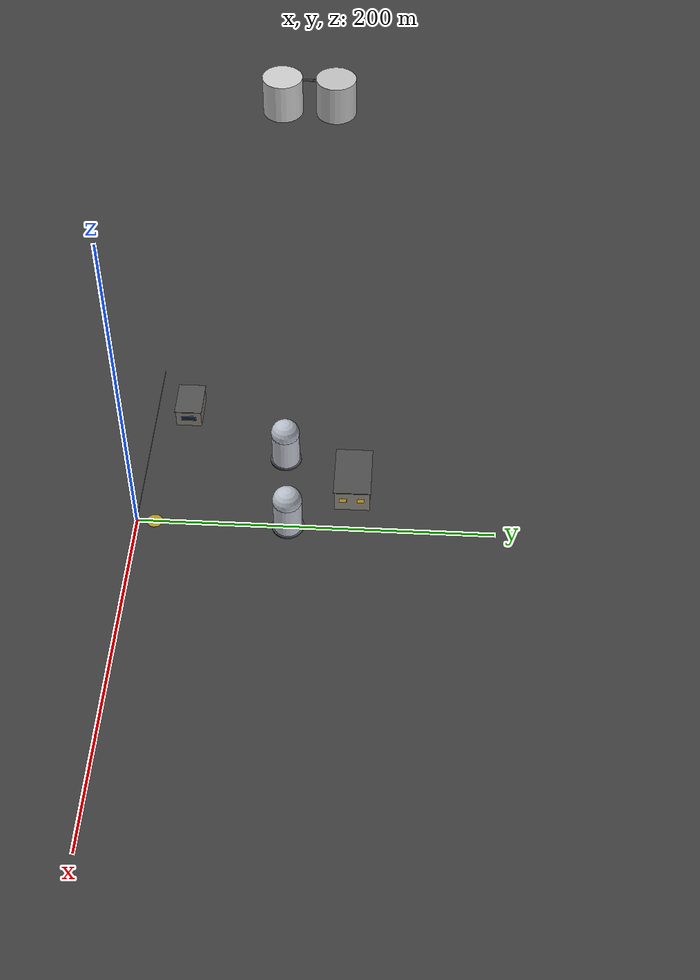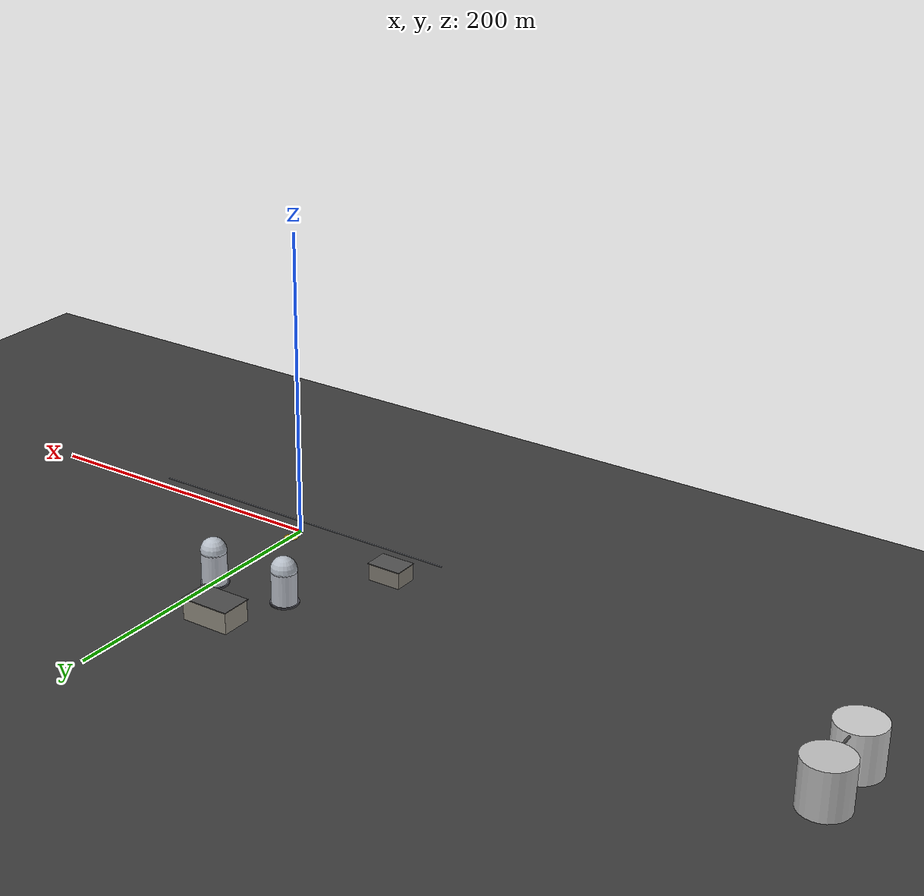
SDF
<sdf version="1.9">
 <world name="lng_terminal">
  <model name="ground">
   <static>true</static>
   <pose>0 0 -0.05 0 0 0</pose>
   <link name="l">
    <collision name="c"><geometry><box><size>2000 2000 0.1</size></box></geometry></collision>
    <visual name="v">
     <geometry><box><size>2000 2000 0.1</size></box></geometry>
     <material>
      <ambient>0.18 0.18 0.18 1</ambient>
      <diffuse>0.24 0.24 0.24 1</diffuse>
      <specular>0.03 0.03 0.03 1</specular>
      <pbr><metal><roughness>0.96</roughness><metalness>0.0</metalness></metal></pbr>
     </material>
    </visual>
   </link>
  </model>
  <model name="drone_d2">
   <static>false</static>
   <pose>0 10 0.18 0 0 0.4</pose>
   <link name="l">
    <gravity>false</gravity>
    <inertial>
     <mass>0.8</mass>
     <inertia><ixx>0.04</ixx><iyy>0.04</iyy><izz>0.04</izz><ixy>0</ixy><ixz>0</ixz><iyz>0</iyz></inertia>
    </inertial>
    <visual name="frame">
     <geometry><box><size>0.36 0.36 0.10</size></box></geometry>
     <material>
      <ambient>0.10 0.10 0.10 1</ambient>
      <diffuse>0.16 0.16 0.18 1</diffuse>
      <pbr><metal><roughness>0.30</roughness><metalness>0.7</metalness></metal></pbr>
     </material>
    </visual>
    <visual name="arm_a">
     <pose>0.18 0.18 0 0 0 0.785</pose>
     <geometry><box><size>0.55 0.05 0.04</size></box></geometry>
     <material><ambient>0.12 0.12 0.14 1</ambient><diffuse>0.18 0.18 0.22 1</diffuse></material>
    </visual>
    <visual name="arm_b">
     <pose>-0.18 0.18 0 0 0 -0.785</pose>
     <geometry><box><size>0.55 0.05 0.04</size></box></geometry>
     <material><ambient>0.12 0.12 0.14 1</ambient><diffuse>0.18 0.18 0.22 1</diffuse></material>
    </visual>
    <visual name="arm_c">
     <pose>-0.18 -0.18 0 0 0 0.785</pose>
     <geometry><box><size>0.55 0.05 0.04</size></box></geometry>
     <material><ambient>0.12 0.12 0.14 1</ambient><diffuse>0.18 0.18 0.22 1</diffuse></material>
    </visual>
    <visual name="arm_d">
     <pose>0.18 -0.18 0 0 0 -0.785</pose>
     <geometry><box><size>0.55 0.05 0.04</size></box></geometry>
     <material><ambient>0.12 0.12 0.14 1</ambient><diffuse>0.18 0.18 0.22 1</diffuse></material>
    </visual>
    <visual name="m_a">
     <pose>0.32 0.32 0.02 0 0 0</pose>
     <geometry><cylinder><radius>0.045</radius><length>0.07</length></cylinder></geometry>
     <material><ambient>0.55 0.50 0.0 1</ambient><diffuse>0.75 0.68 0.0 1</diffuse></material>
    </visual>
    <visual name="m_b">
     <pose>-0.32 0.32 0.02 0 0 0</pose>
     <geometry><cylinder><radius>0.045</radius><length>0.07</length></cylinder></geometry>
     <material><ambient>0.55 0.50 0.0 1</ambient><diffuse>0.75 0.68 0.0 1</diffuse></material>
    </visual>
    <visual name="m_c">
     <pose>-0.32 -0.32 0.02 0 0 0</pose>
     <geometry><cylinder><radius>0.045</radius><length>0.07</length></cylinder></geometry>
     <material><ambient>0.55 0.50 0.0 1</ambient><diffuse>0.75 0.68 0.0 1</diffuse></material>
    </visual>
    <visual name="m_d">
     <pose>0.32 -0.32 0.02 0 0 0</pose>
     <geometry><cylinder><radius>0.045</radius><length>0.07</length></cylinder></geometry>
     <material><ambient>0.55 0.50 0.0 1</ambient><diffuse>0.75 0.68 0.0 1</diffuse></material>
    </visual>
    <collision name="c"><geometry><box><size>0.36 0.36 0.10</size></box></geometry></collision>
   </link>
  </model>
  <model name="drone_pad">
   <static>true</static>
   <pose>0 10 0.02 0 0 0</pose>
   <link name="l">
    <visual name="v">
     <geometry><cylinder><radius>4.5</radius><length>0.04</length></cylinder></geometry>
     <material><ambient>0.58 0.48 0.08 1</ambient><diffuse>0.72 0.60 0.10 1</diffuse></material>
    </visual>
   </link>
  </model>
  <model name="tank_a1">
   <static>true</static>
   <pose>-50 80 0 0 0 0</pose>
   <link name="l">
    <collision name="c">
     <geometry><cylinder><radius>8</radius><length>22</length></cylinder></geometry>
    </collision>
    <visual name="body">
     <pose>0 0 11 0 0 0</pose>
     <geometry><cylinder><radius>8</radius><length>22</length></cylinder></geometry>
     <material>
      <ambient>0.68 0.70 0.74 1</ambient>
      <diffuse>0.76 0.78 0.82 1</diffuse>
      <specular>0.55 0.56 0.60 1</specular>
      <pbr><metal><roughness>0.22</roughness><metalness>0.88</metalness></metal></pbr>
     </material>
    </visual>
    <visual name="dome">
     <pose>0 0 22.5 0 0 0</pose>
     <geometry><sphere><radius>8.2</radius></sphere></geometry>
     <material>
      <ambient>0.65 0.68 0.72 1</ambient>
      <diffuse>0.73 0.76 0.80 1</diffuse>
      <specular>0.60 0.62 0.65 1</specular>
      <pbr><metal><roughness>0.18</roughness><metalness>0.90</metalness></metal></pbr>
     </material>
    </visual>
    <visual name="ring">
     <pose>0 0 0.5 0 0 0</pose>
     <geometry><cylinder><radius>9</radius><length>1.0</length></cylinder></geometry>
     <material>
      <ambient>0.25 0.25 0.28 1</ambient>
      <diffuse>0.32 0.32 0.36 1</diffuse>
      <specular>0.22 0.22 0.24 1</specular>
      <pbr><metal><roughness>0.45</roughness><metalness>0.75</metalness></metal></pbr>
     </material>
    </visual>
   </link>
  </model>
  <model name="tank_a2">
   <static>true</static>
   <pose>0 85 0 0 0 0</pose>
   <link name="l">
    <collision name="c">
     <geometry><cylinder><radius>8</radius><length>22</length></cylinder></geometry>
    </collision>
    <visual name="body">
     <pose>0 0 11 0 0 0</pose>
     <geometry><cylinder><radius>8</radius><length>22</length></cylinder></geometry>
     <material>
      <ambient>0.68 0.70 0.74 1</ambient>
      <diffuse>0.76 0.78 0.82 1</diffuse>
      <specular>0.55 0.56 0.60 1</specular>
      <pbr><metal><roughness>0.22</roughness><metalness>0.88</metalness></metal></pbr>
     </material>
    </visual>
    <visual name="dome">
     <pose>0 0 22.5 0 0 0</pose>
     <geometry><sphere><radius>8.2</radius></sphere></geometry>
     <material>
      <ambient>0.65 0.68 0.72 1</ambient>
      <diffuse>0.73 0.76 0.80 1</diffuse>
      <specular>0.60 0.62 0.65 1</specular>
      <pbr><metal><roughness>0.18</roughness><metalness>0.90</metalness></metal></pbr>
     </material>
    </visual>
    <visual name="ring">
     <pose>0 0 0.5 0 0 0</pose>
     <geometry><cylinder><radius>9</radius><length>1.0</length></cylinder></geometry>
     <material>
      <ambient>0.25 0.25 0.28 1</ambient>
      <diffuse>0.32 0.32 0.36 1</diffuse>
      <specular>0.22 0.22 0.24 1</specular>
      <pbr><metal><roughness>0.45</roughness><metalness>0.75</metalness></metal></pbr>
     </material>
    </visual>
   </link>
  </model>
  <model name="pipe_main">
   <static>true</static>
   <pose>0 1.5 8.5 0 1.5707 0</pose>
   <link name="l">
    <collision name="c">
     <geometry><cylinder><radius>0.28</radius><length>220</length></cylinder></geometry>
    </collision>
    <visual name="v">
     <geometry><cylinder><radius>0.28</radius><length>220</length></cylinder></geometry>
     <material>
      <ambient>0.46 0.48 0.52 1</ambient>
      <diffuse>0.54 0.56 0.60 1</diffuse>
      <pbr><metal><roughness>0.26</roughness><metalness>0.84</metalness></metal></pbr>
     </material>
    </visual>
   </link>
  </model>
  <model name="control_room">
   <static>true</static>
   <pose>-85 20 5.5 0 0 0</pose>
   <link name="l">
    <collision name="c"><geometry><box><size>22 15 11</size></box></geometry></collision>
    <visual name="walls">
     <geometry><box><size>22 15 11</size></box></geometry>
     <material>
      <ambient>0.42 0.40 0.37 1</ambient>
      <diffuse>0.52 0.50 0.46 1</diffuse>
      <pbr><metal><roughness>0.88</roughness><metalness>0.0</metalness></metal></pbr>
     </material>
    </visual>
    <visual name="roof">
     <pose>0 0 5.7 0 0 0</pose>
     <geometry><box><size>23 16 0.4</size></box></geometry>
     <material><ambient>0.25 0.25 0.25 1</ambient><diffuse>0.32 0.32 0.32 1</diffuse></material>
    </visual>
    <visual name="win">
     <pose>11.6 0 1.2 0 0 0</pose>
     <geometry><box><size>0.12 9 3.5</size></box></geometry>
     <material>
      <ambient>0.04 0.08 0.16 1</ambient>
      <diffuse>0.06 0.12 0.22 1</diffuse>
      <emissive>0.05 0.10 0.18 1</emissive>
     </material>
    </visual>
   </link>
  </model>
  <model name="admin_bldg">
   <static>true</static>
   <pose>-30 120 7 0 0 0</pose>
   <link name="l">
    <collision name="c"><geometry><box><size>32 20 14</size></box></geometry></collision>
    <visual name="walls">
     <geometry><box><size>32 20 14</size></box></geometry>
     <material>
      <ambient>0.48 0.46 0.42 1</ambient>
      <diffuse>0.58 0.56 0.51 1</diffuse>
      <pbr><metal><roughness>0.86</roughness><metalness>0.0</metalness></metal></pbr>
     </material>
    </visual>
    <visual name="roof">
     <pose>0 0 7.2 0 0 0</pose>
     <geometry><box><size>33 21 0.5</size></box></geometry>
     <material><ambient>0.24 0.24 0.24 1</ambient><diffuse>0.30 0.30 0.30 1</diffuse></material>
    </visual>
    <visual name="win_a">
     <pose>16.6 -5 1.5 0 0 0</pose>
     <geometry><box><size>0.12 4 3</size></box></geometry>
     <material>
      <ambient>0.8 0.6 0.18 1</ambient>
      <diffuse>1.0 0.78 0.22 1</diffuse>
      <emissive>0.55 0.38 0.08 1</emissive>
     </material>
    </visual>
    <visual name="win_b">
     <pose>16.6 5 1.5 0 0 0</pose>
     <geometry><box><size>0.12 4 3</size></box></geometry>
     <material>
      <ambient>0.8 0.6 0.18 1</ambient>
      <diffuse>1.0 0.78 0.22 1</diffuse>
      <emissive>0.55 0.38 0.08 1</emissive>
     </material>
    </visual>
   </link>
  </model>
  <model name="s5_tanks_detailed">
   <static>true</static>
   <pose>-400 50 0 0 0 0</pose>
   <link name="l">
    <collision name="c1">
     <pose>0 0 15 0 0 0</pose>
     <geometry><cylinder><radius>15</radius><length>30</length></cylinder></geometry>
    </collision>
    <visual name="v1">
     <pose>0 0 15 0 0 0</pose>
     <geometry><cylinder><radius>15</radius><length>30</length></cylinder></geometry>
     <material>
      <ambient>0.7 0.7 0.7 1</ambient>
      <diffuse>0.8 0.8 0.8 1</diffuse>
      <pbr><metal><roughness>0.4</roughness><metalness>0.7</metalness></metal></pbr>
     </material>
    </visual>
    <collision name="c2">
     <pose>0 40 15 0 0 0</pose>
     <geometry><cylinder><radius>15</radius><length>30</length></cylinder></geometry>
    </collision>
    <visual name="v2">
     <pose>0 40 15 0 0 0</pose>
     <geometry><cylinder><radius>15</radius><length>30</length></cylinder></geometry>
     <material>
      <ambient>0.65 0.65 0.65 1</ambient>
      <diffuse>0.75 0.75 0.75 1</diffuse>
      <pbr><metal><roughness>0.4</roughness><metalness>0.7</metalness></metal></pbr>
     </material>
    </visual>
    <visual name="pipe">
     <pose>0 20 28 1.5707 0 0</pose>
     <geometry><cylinder><radius>0.8</radius><length>40</length></cylinder></geometry>
     <material><ambient>0.3 0.3 0.3 1</ambient></material>
    </visual>
   </link>
  </model>
 </world>
</sdf>
